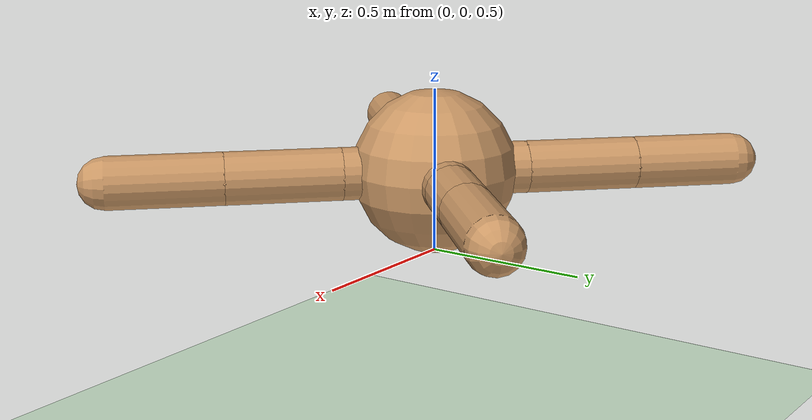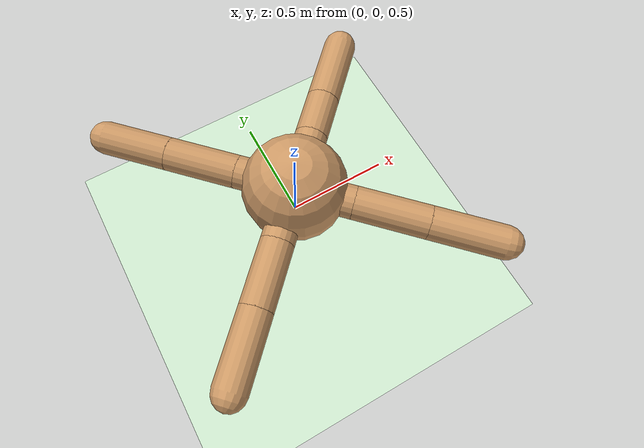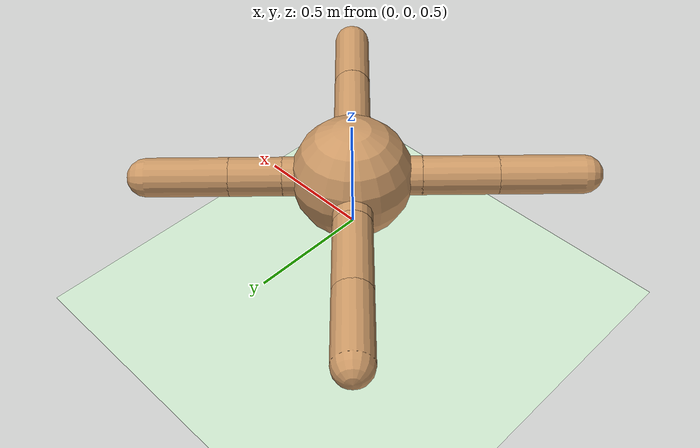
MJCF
<mujoco model="tensegrity default scene">
  <compiler angle="degree" coordinate="local" inertiafromgeom="true" autolimits="true" />
  <option integrator="RK4" timestep="0.01" gravity="0 0 -9.81" />

  <statistic center="0 0 .3" extent="1.2" />

    <asset>
    <texture builtin="gradient" height="100" rgb1="1 1 1" rgb2="0 0 0" type="skybox" width="100" />
    <texture builtin="flat" height="1278" mark="cross" markrgb="1 1 1" name="texgeom" random="0.01" rgb1="0.8 0.6 0.4" rgb2="0.8 0.6 0.4" type="cube" width="127" />
    <texture builtin="checker" height="100" name="texplane" rgb1="0 0 0" rgb2="0.8 0.8 0.8" type="2d" width="100" />
    <material name="MatPlane" reflectance="0.5" shininess="1" specular="1" texrepeat="60 60" texture="texplane" />
    <material name="geom" texture="texgeom" texuniform="true" />
  </asset>

  <worldbody>
    <light cutoff="100" diffuse="1 1 1" dir="-0 0 -1.3" directional="true" exponent="1" pos="0 0 1.3" specular=".1 .1 .1" />
    <geom conaffinity="1" condim="3" material="MatPlane" name="floor" pos="0 0 0" rgba="0.8 0.9 0.8 1" size="40 40 40" type="plane" />
  </worldbody>

<include file="AntRobot.xml" /></mujoco>

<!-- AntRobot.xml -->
<mujoco>
    <default>
        <joint armature="1" damping="1" limited="true"/>
        <geom condim="3" conaffinity="0" density="5.0" friction="1 0.5 0.5" margin="0.01" rgba="0.8 0.6 0.4 1"/>
    </default>
    <worldbody>
        <body name="Base" pos="0.0 0.0 0.75">
            <joint type="free" armature="0" damping="0" limited="false" margin="0.01" pos="0 0 0"/>
            <geom type="sphere" rgba="0.8 0.6 0.4 1" size="0.25"/>
            <camera name="track" mode="trackcom" pos="0 -3 0.3" xyaxes="1 0 0 0 0 1"/>
            <geom name="limb0" type="capsule" fromto="0 0 0 0.2 0.2 0.0" size="0.08"/>
            <body name="rod_0.1" pos="0.2764296648395146 0.2764296648395146 0.0">
                <geom type="capsule" fromto="-0.07642966483951455 -0.07642966483951455 -0.0 0.07642966483951455 0.07642966483951455 0.0" size="0.08" name="geom_0.1"/>
                <site pos="0 0 0" quat="0.9238795325112867 0.0 0.0 0.3826834323650898" name="site_0.1"/>
                <joint type="hinge" pos="-0.07642966483951455 -0.07642966483951455 -0.0" axis="0 0 1" range="-30 30" name="joint_Base=rod_0.1"/>
                <body pos="-0.07642966483951455 -0.07642966483951455 -0.0" name="p0">
                    <site name="p0"/>
                </body>
                <body name="rod_1.2" pos="0.1950772877541734 0.1950772877541734 0.0">
                    <geom type="capsule" fromto="-0.11864762291465886 -0.11864762291465886 -0.0 0.11864762291465886 0.11864762291465886 0.0" size="0.08" name="geom_1.2"/>
                    <site pos="0 0 0" quat="0.9238795325112867 0.0 0.0 0.3826834323650898" name="site_1.2"/>
                    <joint type="hinge" pos="-0.11864762291465886 -0.11864762291465886 -0.0" axis="-1 1 0" range="30 70" name="joint_rod_0.1=rod_1.2"/>
                    <body pos="-0.11864762291465886 -0.11864762291465886 -0.0" name="p1">
                        <site name="p1"/>
                    </body>
                </body>
            </body>
            <geom name="limb1" type="capsule" fromto="0 0 0 -0.2 0.2 0.0" size="0.08"/>
            <body name="rod_3.4" pos="-0.32099563118943286 0.32099563118943286 0.0">
                <geom type="capsule" fromto="0.12099563118943282 -0.12099563118943282 -0.0 -0.12099563118943282 0.12099563118943282 0.0" size="0.08" name="geom_3.4"/>
                <site pos="0 0 0" quat="0.38268343236508984 0.0 -0.0 0.9238795325112867" name="site_3.4"/>
                <joint type="hinge" pos="0.12099563118943282 -0.12099563118943282 -0.0" axis="0 0 1" range="-30 30" name="joint_Base=rod_3.4"/>
                <body pos="0.12099563118943282 -0.12099563118943282 -0.0" name="p3">
                    <site name="p3"/>
                </body>
                <body name="rod_4.5" pos="-0.23357971773176797 0.23357971773176797 0.0">
                    <geom type="capsule" fromto="0.11258408654233515 -0.11258408654233515 -0.0 -0.11258408654233515 0.11258408654233515 0.0" size="0.08" name="geom_4.5"/>
                    <site pos="0 0 0" quat="0.38268343236508984 0.0 -0.0 0.9238795325112867" name="site_4.5"/>
                    <joint type="hinge" pos="0.11258408654233515 -0.11258408654233515 -0.0" axis="1 1 0" range="-70 -30" name="joint_rod_3.4=rod_4.5"/>
                    <body pos="0.11258408654233515 -0.11258408654233515 -0.0" name="p4">
                        <site name="p4"/>
                    </body>
                </body>
            </body>
            <geom name="limb2" type="capsule" fromto="0 0 0 -0.2 -0.2 0.0" size="0.08"/>
            <body name="rod_6.7" pos="-0.30972146682437185 -0.30972146682437185 0.0">
                <geom type="capsule" fromto="0.10972146682437187 0.10972146682437187 -0.0 -0.10972146682437187 -0.10972146682437187 0.0" size="0.08" name="geom_6.7"/>
                <site pos="0 0 0" quat="0.38268343236508984 0.0 -0.0 -0.9238795325112867" name="site_6.7"/>
                <joint type="hinge" pos="0.10972146682437187 0.10972146682437187 -0.0" axis="0 0 1" range="-30 30" name="joint_Base=rod_6.7"/>
                <body pos="0.10972146682437187 0.10972146682437187 -0.0" name="p6">
                    <site name="p6"/>
                </body>
                <body name="rod_7.8" pos="-0.23296204706862575 -0.23296204706862575 0.0">
                    <geom type="capsule" fromto="0.12324058024425388 0.12324058024425388 -0.0 -0.12324058024425388 -0.12324058024425388 0.0" size="0.08" name="geom_7.8"/>
                    <site pos="0 0 0" quat="0.38268343236508984 0.0 -0.0 -0.9238795325112867" name="site_7.8"/>
                    <joint type="hinge" pos="0.12324058024425388 0.12324058024425388 -0.0" axis="-1 1 0" range="-70 -30" name="joint_rod_6.7=rod_7.8"/>
                    <body pos="0.12324058024425388 0.12324058024425388 -0.0" name="p7">
                        <site name="p7"/>
                    </body>
                </body>
            </body>
            <geom name="limb3" type="capsule" fromto="0 0 0 0.2 -0.2 0.0" size="0.08"/>
            <body name="rod_9.10" pos="0.32374368670764586 -0.32374368670764586 0.0">
                <geom type="capsule" fromto="-0.12374368670764582 0.12374368670764582 -0.0 0.12374368670764582 -0.12374368670764582 0.0" size="0.08" name="geom_9.10"/>
                <site pos="0 0 0" quat="0.9238795325112867 0.0 0.0 -0.38268343236508984" name="site_9.10"/>
                <joint type="hinge" pos="-0.12374368670764582 0.12374368670764582 -0.0" axis="0 0 1" range="-30 30" name="joint_Base=rod_9.10"/>
                <body pos="-0.12374368670764582 0.12374368670764582 -0.0" name="p9">
                    <site name="p9"/>
                </body>
                <body name="rod_10.11" pos="0.2458828559054281 -0.2458828559054281 0.0">
                    <geom type="capsule" fromto="-0.12213916919778228 0.12213916919778228 -0.0 0.12213916919778228 -0.12213916919778228 0.0" size="0.08" name="geom_10.11"/>
                    <site pos="0 0 0" quat="0.9238795325112867 0.0 0.0 -0.38268343236508984" name="site_10.11"/>
                    <joint type="hinge" pos="-0.12213916919778228 0.12213916919778228 -0.0" axis="1 1 0" range="30 70" name="joint_rod_9.10=rod_10.11"/>
                    <body pos="-0.12213916919778228 0.12213916919778228 -0.0" name="p10">
                        <site name="p10"/>
                    </body>
                </body>
            </body>
        </body>
    </worldbody>
    <actuator>
        <motor gear="150" ctrlrange="-1.0 1.0" ctrllimited="true" joint="joint_Base=rod_0.1"/>
        <motor gear="150" ctrlrange="-1.0 1.0" ctrllimited="true" joint="joint_rod_0.1=rod_1.2"/>
        <motor gear="150" ctrlrange="-1.0 1.0" ctrllimited="true" joint="joint_Base=rod_3.4"/>
        <motor gear="150" ctrlrange="-1.0 1.0" ctrllimited="true" joint="joint_rod_3.4=rod_4.5"/>
        <motor gear="150" ctrlrange="-1.0 1.0" ctrllimited="true" joint="joint_Base=rod_6.7"/>
        <motor gear="150" ctrlrange="-1.0 1.0" ctrllimited="true" joint="joint_rod_6.7=rod_7.8"/>
        <motor gear="150" ctrlrange="-1.0 1.0" ctrllimited="true" joint="joint_Base=rod_9.10"/>
        <motor gear="150" ctrlrange="-1.0 1.0" ctrllimited="true" joint="joint_rod_9.10=rod_10.11"/>
    </actuator>
    <sensor>
        <accelerometer site="site_0.1"/>
        <gyro site="site_0.1"/>
        <magnetometer site="site_0.1"/>
        <accelerometer site="site_1.2"/>
        <gyro site="site_1.2"/>
        <magnetometer site="site_1.2"/>
        <accelerometer site="site_3.4"/>
        <gyro site="site_3.4"/>
        <magnetometer site="site_3.4"/>
        <accelerometer site="site_4.5"/>
        <gyro site="site_4.5"/>
        <magnetometer site="site_4.5"/>
        <accelerometer site="site_6.7"/>
        <gyro site="site_6.7"/>
        <magnetometer site="site_6.7"/>
        <accelerometer site="site_7.8"/>
        <gyro site="site_7.8"/>
        <magnetometer site="site_7.8"/>
        <accelerometer site="site_9.10"/>
        <gyro site="site_9.10"/>
        <magnetometer site="site_9.10"/>
        <accelerometer site="site_10.11"/>
        <gyro site="site_10.11"/>
        <magnetometer site="site_10.11"/>
    </sensor>
    <contact>
        <pair geom1="geom_0.1" geom2="floor"/>
        <pair geom1="geom_1.2" geom2="floor"/>
        <pair geom1="geom_3.4" geom2="floor"/>
        <pair geom1="geom_4.5" geom2="floor"/>
        <pair geom1="geom_6.7" geom2="floor"/>
        <pair geom1="geom_7.8" geom2="floor"/>
        <pair geom1="geom_9.10" geom2="floor"/>
        <pair geom1="geom_10.11" geom2="floor"/>
    </contact>
</mujoco>
